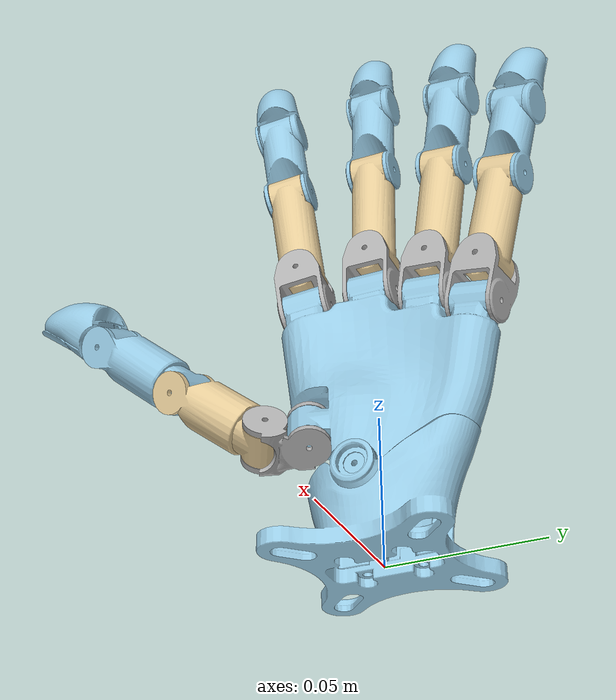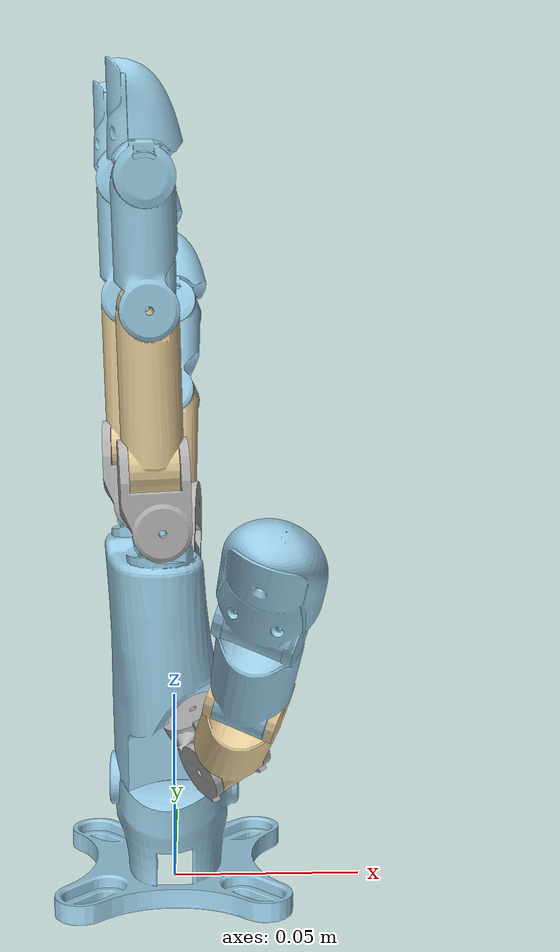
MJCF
<mujoco model="wujihand-left">
  <compiler angle="radian" meshdir="../meshes/left/" />
  <option jacobian="sparse" integrator="RK4" timestep="0.002" solver="Newton" iterations="50" tolerance="1e-10" />
  <default>
    <joint armature="0.0002" damping="0.0" />
  </default>
  <asset>
    <mesh name="l_base_link" content_type="model/stl" file="l_base_link.STL" />
    <mesh name="l_thumb_proximal" content_type="model/stl" file="l_thumb_proximal.STL" />
    <mesh name="l_thumb_proximal_abd" content_type="model/stl" file="l_thumb_proximal_abd.STL" />
    <mesh name="l_thumb_middle" content_type="model/stl" file="l_thumb_middle.STL" />
    <mesh name="l_thumb_distal" content_type="model/stl" file="l_thumb_distal.STL" />
    <mesh name="l_index_finger_proximal" content_type="model/stl" file="l_index_finger_proximal.STL" />
    <mesh name="l_index_finger_proximal_abd" content_type="model/stl" file="l_index_finger_proximal_abd.STL" />
    <mesh name="l_index_finger_middle" content_type="model/stl" file="l_index_finger_middle.STL" />
    <mesh name="l_index_finger_distal" content_type="model/stl" file="l_index_finger_distal.STL" />
    <mesh name="l_middle_finger_proximal" content_type="model/stl" file="l_middle_finger_proximal.STL" />
    <mesh name="l_middle_finger_proximal_abd" content_type="model/stl" file="l_middle_finger_proximal_abd.STL" />
    <mesh name="l_middle_finger_middle" content_type="model/stl" file="l_middle_finger_middle.STL" />
    <mesh name="l_middle_finger_distal" content_type="model/stl" file="l_middle_finger_distal.STL" />
    <mesh name="l_ring_finger_proximal" content_type="model/stl" file="l_ring_finger_proximal.STL" />
    <mesh name="l_ring_finger_proximal_abd" content_type="model/stl" file="l_ring_finger_proximal_abd.STL" />
    <mesh name="l_ring_finger_middle" content_type="model/stl" file="l_ring_finger_middle.STL" />
    <mesh name="l_ring_finger_distal" content_type="model/stl" file="l_ring_finger_distal.STL" />
    <mesh name="l_pinky_proximal" content_type="model/stl" file="l_pinky_proximal.STL" />
    <mesh name="l_pinky_proximal_abd" content_type="model/stl" file="l_pinky_proximal_abd.STL" />
    <mesh name="l_pinky_middle" content_type="model/stl" file="l_pinky_middle.STL" />
    <mesh name="l_pinky_distal" content_type="model/stl" file="l_pinky_distal.STL" />
    <mesh name="l_wrist" content_type="model/stl" file="l_wrist.STL" />
  </asset>
  <worldbody>
    <body name="l_base_link">
      <inertial pos="-0.0026895189358 0.00107718434771 0.0533757160014" mass="0.3013" quat="-0.01026946 -0.03350788 -0.02501735 0.99907252" diaginertia="2.99758531e-04 2.36470022e-04 1.02152019e-04" />
      <geom type="mesh" contype="0" conaffinity="0" group="1" density="0" rgba="0.6 0.8 0.9 1" mesh="l_base_link" />
      <geom type="mesh" rgba="0.6 0.8 0.9 1" mesh="l_base_link" contype="1" conaffinity="1" />
      <geom pos="0.00030016 -0.003 0.0285" quat="0.707014 0.0113822 0.0117356 -0.707011" type="mesh" contype="0" conaffinity="0" group="1" density="0" rgba="0.6 0.8 0.9 1" mesh="l_wrist" />
      <geom pos="0.00030016 -0.003 0.0285" quat="0.707014 0.0113822 0.0117356 -0.707011" type="mesh" rgba="0.6 0.8 0.9 1" mesh="l_wrist" contype="1" conaffinity="1" />
      <body name="l_thumb_proximal" pos="0.0084384 -0.020208 0.044959" quat="0.285631 0.0606193 0.720064 -0.629482">
        <inertial pos="0.00178311 0.000791225 0.00701986" quat="0.901889 -0.0372349 0.0785718 0.423126" mass="0.011" diaginertia="8.62864e-07 8.21693e-07 6.54356e-07" />
        <joint name="l_thumb_cmc_flex" pos="0 0 0" axis="0 -1 0" range="-1.187 1.291" actuatorfrcrange="-0.6 0.6" armature="0.0005" />
        <geom type="mesh" contype="0" conaffinity="0" group="1" density="0" rgba="0.7 0.7 0.7 1" mesh="l_thumb_proximal" />
        <geom type="mesh" rgba="0.7 0.7 0.7 1" mesh="l_thumb_proximal" contype="0" conaffinity="0" />
        <body name="l_thumb_proximal_abd" pos="0.000631673 0.000257895 0.0141612" quat="0.644417 0.307201 0.177193 -0.677463">
          <inertial pos="-1.22552e-05 -4.92145e-06 0.0135605" quat="0.532392 -0.00121984 -0.00222931 0.846494" mass="0.0336" diaginertia="4.38854e-06 4.24746e-06 1.23727e-06" />
          <joint name="l_thumb_cmc_abd" pos="0 0 0" axis="0 1 0" range="-1.484 0.698" actuatorfrcrange="-0.6 0.6" armature="0.0005" />
          <geom type="mesh" contype="0" conaffinity="0" group="1" density="0" rgba="0.9 0.8 0.6 1" mesh="l_thumb_proximal_abd" />
          <geom type="mesh" rgba="0.9 0.8 0.6 1" mesh="l_thumb_proximal_abd" contype="2" conaffinity="2" />
          <body name="l_thumb_middle" pos="4.3136e-05 2.4905e-05 0.033496" quat="0.865201 -0.0377753 0.0218096 -0.499525">
            <inertial pos="1.7747e-07 2.70399e-07 0.0148152" quat="0.999999 -7.13361e-06 5.0611e-06 -0.0012994" mass="0.0358" diaginertia="5.11455e-06 5.00827e-06 1.32802e-06" />
            <joint name="l_thumb_mcp" pos="0 0 0" axis="0 1 0" range="-1.047 1.57" actuatorfrcrange="-0.3 0.3" />
            <geom type="mesh" contype="0" conaffinity="0" group="1" density="0" rgba="0.6 0.8 0.9 1" mesh="l_thumb_middle" />
            <geom type="mesh" rgba="0.6 0.8 0.9 1" mesh="l_thumb_middle" contype="1" conaffinity="1" />
            <body name="l_thumb_distal" pos="0 0 0.036">
              <inertial pos="0.000512401 -1.969e-05 0.0149323" quat="0.998084 -0.00596292 -0.0550991 -0.0274999" mass="0.0159" diaginertia="1.38099e-06 1.3339e-06 6.79986e-07" />
              <joint name="l_thumb_ip" pos="0 0 0" axis="0 1 0" range="-1.047 1.57" actuatorfrcrange="-0.3 0.3" />
              <geom type="mesh" contype="0" conaffinity="0" group="1" density="0" rgba="0.6 0.8 0.9 1" mesh="l_thumb_distal" />
              <geom type="mesh" rgba="0.6 0.8 0.9 1" mesh="l_thumb_distal" contype="1" conaffinity="1" />
              <site name="l_thumb_tip" pos="0 0 0.029787" group="3" size="0.002" rgba="1 0 0 1" />
            </body>
          </body>
        </body>
      </body>
      <body name="l_index_finger_proximal" pos="-0.00302463 -0.0256525 0.0984779" quat="0.996271 0.0693073 -0.0163843 0.0487027">
        <inertial pos="-0.00178137 1.83184e-09 0.00760139" quat="0.706594 -0.0269145 -0.0269145 0.706594" mass="0.0116" diaginertia="9.19684e-07 9.08608e-07 7.88412e-07" />
        <joint name="l_index_finger_mcp_flex" pos="0 0 0" axis="0 1 0" range="-1.047 1.57" actuatorfrcrange="-2 2" armature="0.0005" />
        <geom type="mesh" contype="0" conaffinity="0" group="1" density="0" rgba="0.7 0.7 0.7 1" mesh="l_index_finger_proximal" />
        <geom type="mesh" rgba="0.7 0.7 0.7 1" mesh="l_index_finger_proximal" contype="0" conaffinity="0" />
        <body name="l_index_finger_proximal_abd" pos="-0.00120098 0 0.0145" quat="0.707107 0 0 0.707107">
          <inertial pos="8.04677e-08 -7.30404e-07 0.0187994" quat="0.983237 -1.60588e-05 -3.84243e-06 -0.18233" mass="0.0339" diaginertia="7.01589e-06 7.01555e-06 9.1448e-07" />
          <joint name="l_index_finger_mcp_abd" pos="0 0 0" axis="0 1 0" range="-0.698 0.698" actuatorfrcrange="-0.2 0.2" />
          <geom type="mesh" contype="0" conaffinity="0" group="1" density="0" rgba="0.9 0.8 0.6 1" mesh="l_index_finger_proximal_abd" />
          <geom type="mesh" rgba="0.9 0.8 0.6 1" mesh="l_index_finger_proximal_abd" contype="2" conaffinity="2" />
          <body name="l_index_finger_middle" pos="0 0 0.0376" quat="0.707105 0 0 -0.707108">
            <inertial pos="-0.000247887 -5.07335e-08 0.0190348" quat="0.999883 7.82228e-06 0.0152755 0.000297981" mass="0.0212" diaginertia="2.47797e-06 2.40525e-06 6.52478e-07" />
            <joint name="l_index_finger_pip" pos="0 0 0" axis="0 1 0" range="-1.047 2.094" actuatorfrcrange="-0.3 0.3" />
            <geom type="mesh" contype="0" conaffinity="0" group="1" density="0" rgba="0.6 0.8 0.9 1" mesh="l_index_finger_middle" />
            <geom type="mesh" rgba="0.6 0.8 0.9 1" mesh="l_index_finger_middle" contype="1" conaffinity="1" />
            <body name="l_index_finger_distal" pos="0 0 0.0295">
              <inertial pos="-2.6809e-05 0.000450223 0.0122088" quat="0.995535 0.0584894 -0.0523628 0.0524081" mass="0.0078" diaginertia="5.687e-07 5.37521e-07 2.69652e-07" />
              <joint name="l_index_finger_dip" pos="0 0 0" axis="0 1 0" range="-1.047 1.57" actuatorfrcrange="-0.3 0.3" />
              <geom type="mesh" contype="0" conaffinity="0" group="1" density="0" rgba="0.6 0.8 0.9 1" mesh="l_index_finger_distal" />
              <geom type="mesh" rgba="0.6 0.8 0.9 1" mesh="l_index_finger_distal" contype="1" conaffinity="1" />
              <site name="l_index_finger_tip" pos="0 0 0.02475" group="3" size="0.002" rgba="1 0 0 1" />
            </body>
          </body>
        </body>
      </body>
      <body name="l_middle_finger_proximal" pos="-0.00800284 -0.00394327 0.102415" quat="0.999841 -0.00558408 -0.0169538 -0.000254821">
        <inertial pos="-0.00178137 1.83184e-09 0.00760139" quat="0.706594 -0.0269145 -0.0269145 0.706594" mass="0.0116" diaginertia="9.19684e-07 9.08608e-07 7.88412e-07" />
        <joint name="l_middle_finger_mcp_flex" pos="0 0 0" axis="0 1 0" range="-1.047 1.57" actuatorfrcrange="-2 2" armature="0.0005" />
        <geom type="mesh" contype="0" conaffinity="0" group="1" density="0" rgba="0.7 0.7 0.7 1" mesh="l_middle_finger_proximal" />
        <geom type="mesh" rgba="0.7 0.7 0.7 1" mesh="l_middle_finger_proximal" contype="0" conaffinity="0" />
        <body name="l_middle_finger_proximal_abd" pos="-0.00120098 0 0.0145" quat="0.707107 0 0 0.707107">
          <inertial pos="8.04677e-08 -7.30404e-07 0.0187994" quat="0.983237 -1.60588e-05 -3.84243e-06 -0.18233" mass="0.0339" diaginertia="7.01589e-06 7.01555e-06 9.1448e-07" />
          <joint name="l_middle_finger_mcp_abd" pos="0 0 0" axis="0 1 0" range="-0.698 0.698" actuatorfrcrange="-0.2 0.2" />
          <geom type="mesh" contype="0" conaffinity="0" group="1" density="0" rgba="0.9 0.8 0.6 1" mesh="l_middle_finger_proximal_abd" />
          <geom type="mesh" rgba="0.9 0.8 0.6 1" mesh="l_middle_finger_proximal_abd" contype="2" conaffinity="2" />
          <body name="l_middle_finger_middle" pos="0 0 0.0376" quat="0.707105 0 0 -0.707108">
            <inertial pos="-0.000247887 -5.07335e-08 0.0190348" quat="0.999883 7.82228e-06 0.0152755 0.000297981" mass="0.0212" diaginertia="2.47797e-06 2.40525e-06 6.52478e-07" />
            <joint name="l_middle_finger_pip" pos="0 0 0" axis="0 1 0" range="-1.047 2.094" actuatorfrcrange="-0.3 0.3" />
            <geom type="mesh" contype="0" conaffinity="0" group="1" density="0" rgba="0.6 0.8 0.9 1" mesh="l_middle_finger_middle" />
            <geom type="mesh" rgba="0.6 0.8 0.9 1" mesh="l_middle_finger_middle" contype="1" conaffinity="1" />
            <body name="l_middle_finger_distal" pos="0 0 0.0295">
              <inertial pos="-2.6809e-05 0.000450223 0.0122088" quat="0.995535 0.0584894 -0.0523628 0.0524081" mass="0.0078" diaginertia="5.687e-07 5.37521e-07 2.69652e-07" />
              <joint name="l_middle_finger_dip" pos="0 0 0" axis="0 1 0" range="-1.047 1.57" actuatorfrcrange="-0.3 0.3" />
              <geom type="mesh" contype="0" conaffinity="0" group="1" density="0" rgba="0.6 0.8 0.9 1" mesh="l_middle_finger_distal" />
              <geom type="mesh" rgba="0.6 0.8 0.9 1" mesh="l_middle_finger_distal" contype="1" conaffinity="1" />
              <site name="l_middle_finger_tip" pos="0 0 0.02475" group="3" size="0.002" rgba="1 0 0 1" />
            </body>
          </body>
        </body>
      </body>
      <body name="l_ring_finger_proximal" pos="-0.00529309 0.0167516 0.0938973" quat="0.996893 -0.0710577 -0.00588759 -0.033469">
        <inertial pos="-0.00178137 1.83184e-09 0.00760139" quat="0.706594 -0.0269145 -0.0269145 0.706594" mass="0.0116" diaginertia="9.19684e-07 9.08608e-07 7.88412e-07" />
        <joint name="l_ring_finger_mcp_flex" pos="0 0 0" axis="0 1 0" range="-1.047 1.57" actuatorfrcrange="-2 2" armature="0.0005" />
        <geom type="mesh" contype="0" conaffinity="0" group="1" density="0" rgba="0.7 0.7 0.7 1" mesh="l_ring_finger_proximal" />
        <geom type="mesh" rgba="0.7 0.7 0.7 1" mesh="l_ring_finger_proximal" contype="0" conaffinity="0" />
        <body name="l_ring_finger_proximal_abd" pos="-0.00120098 0 0.0145" quat="0.707107 0 0 0.707107">
          <inertial pos="8.04677e-08 -7.30404e-07 0.0187994" quat="0.983237 -1.60588e-05 -3.84243e-06 -0.18233" mass="0.0339" diaginertia="7.01589e-06 7.01555e-06 9.1448e-07" />
          <joint name="l_ring_finger_mcp_abd" pos="0 0 0" axis="0 1 0" range="-0.698 0.698" actuatorfrcrange="-0.2 0.2" />
          <geom type="mesh" contype="0" conaffinity="0" group="1" density="0" rgba="0.9 0.8 0.6 1" mesh="l_ring_finger_proximal_abd" />
          <geom type="mesh" rgba="0.9 0.8 0.6 1" mesh="l_ring_finger_proximal_abd" contype="2" conaffinity="2" />
          <body name="l_ring_finger_middle" pos="0 0 0.0376" quat="0.707105 0 0 -0.707108">
            <inertial pos="-0.000247887 -5.07335e-08 0.0190348" quat="0.999883 7.82228e-06 0.0152755 0.000297981" mass="0.0212" diaginertia="2.47797e-06 2.40525e-06 6.52478e-07" />
            <joint name="l_ring_finger_pip" pos="0 0 0" axis="0 1 0" range="-1.047 2.094" actuatorfrcrange="-0.3 0.3" />
            <geom type="mesh" contype="0" conaffinity="0" group="1" density="0" rgba="0.6 0.8 0.9 1" mesh="l_ring_finger_middle" />
            <geom type="mesh" rgba="0.6 0.8 0.9 1" mesh="l_ring_finger_middle" contype="1" conaffinity="1" />
            <body name="l_ring_finger_distal" pos="0 0 0.0295">
              <inertial pos="-2.6809e-05 0.000450223 0.0122088" quat="0.995535 0.0584894 -0.0523628 0.0524081" mass="0.0078" diaginertia="5.687e-07 5.37521e-07 2.69652e-07" />
              <joint name="l_ring_finger_dip" pos="0 0 0" axis="0 1 0" range="-1.047 1.57" actuatorfrcrange="-0.3 0.3" />
              <geom type="mesh" contype="0" conaffinity="0" group="1" density="0" rgba="0.6 0.8 0.9 1" mesh="l_ring_finger_distal" />
              <geom type="mesh" rgba="0.6 0.8 0.9 1" mesh="l_ring_finger_distal" contype="1" conaffinity="1" />
              <site name="l_ring_finger_tip" pos="0 0 0.02475" group="3" size="0.002" rgba="1 0 0 1" />
            </body>
          </body>
        </body>
      </body>
      <body name="l_pinky_proximal" pos="-0.000434212 0.0343572 0.0837915" quat="0.989997 -0.124209 0.00357802 -0.0668173">
        <inertial pos="-0.00178136 -2.12813e-07 0.00760145" quat="0.70667 -0.0268964 -0.0269308 0.706519" mass="0.0116" diaginertia="9.19664e-07 9.08603e-07 7.88413e-07" />
        <joint name="l_pinky_mcp_flex" pos="0 0 0" axis="0 1 0" range="-1.047 1.57" actuatorfrcrange="-2 2" armature="0.0005" />
        <geom type="mesh" contype="0" conaffinity="0" group="1" density="0" rgba="0.7 0.7 0.7 1" mesh="l_pinky_proximal" />
        <geom type="mesh" rgba="0.7 0.7 0.7 1" mesh="l_pinky_proximal" contype="0" conaffinity="0" />
        <body name="l_pinky_proximal_abd" pos="-0.00120098 0 0.0145" quat="0.707107 0 0 0.707107">
          <inertial pos="1.55649e-06 -5.45404e-07 0.016785" quat="0.647382 -3.02083e-05 7.77169e-06 0.762165" mass="0.0304" diaginertia="5.38014e-06 5.37944e-06 8.1771e-07" />
          <joint name="l_pinky_mcp_abd" pos="0 0 0" axis="0 1 0" range="-0.698 0.698" actuatorfrcrange="-0.2 0.2" />
          <geom type="mesh" contype="0" conaffinity="0" group="1" density="0" rgba="0.9 0.8 0.6 1" mesh="l_pinky_proximal_abd" />
          <geom type="mesh" rgba="0.9 0.8 0.6 1" mesh="l_pinky_proximal_abd" contype="2" conaffinity="2" />
          <body name="l_pinky_middle" pos="0.0001 0 0.0336" quat="0.707105 0 0 -0.707108">
            <inertial pos="-0.000264491 -3.23236e-07 0.0178807" quat="0.999872 3.90058e-06 0.0159651 0.000317108" mass="0.0188" diaginertia="2.05957e-06 1.98647e-06 5.84911e-07" />
            <joint name="l_pinky_pip" pos="0 0 0" axis="0 1 0" range="-1.047 2.094" actuatorfrcrange="-0.3 0.3" />
            <geom type="mesh" contype="0" conaffinity="0" group="1" density="0" rgba="0.6 0.8 0.9 1" mesh="l_pinky_middle" />
            <geom type="mesh" rgba="0.6 0.8 0.9 1" mesh="l_pinky_middle" contype="1" conaffinity="1" />
            <body name="l_pinky_distal" pos="0 0 0.0275">
              <inertial pos="-0.000344833 0.000450223 0.012204" quat="0.994769 0.0578017 -0.0653262 0.0531671" mass="0.0078" diaginertia="5.687e-07 5.37521e-07 2.69652e-07" />
              <joint name="l_pinky_dip" pos="0 0 0" axis="0 1 0" range="-1.047 1.57" actuatorfrcrange="-0.3 0.3" />
              <geom type="mesh" contype="0" conaffinity="0" group="1" density="0" rgba="0.6 0.8 0.9 1" mesh="l_pinky_distal" />
              <geom type="mesh" rgba="0.6 0.8 0.9 1" mesh="l_pinky_distal" contype="1" conaffinity="1" />
              <site name="l_pinky_tip" pos="0 0 0.024755" group="3" size="0.002" rgba="1 0 0 1" />
            </body>
          </body>
        </body>
      </body>
    </body>
  </worldbody>
  <actuator>
    <position name="left_finger1_joint1_actuator" joint="l_thumb_cmc_flex" kp="0.40844710645048043" kv="0.020882010257063675" ctrlrange="-1.187 1.291" forcerange="-0.6 0.6" />
    <position name="left_finger1_joint2_actuator" joint="l_thumb_cmc_abd" kp="0.6858601063643346" kv="0.030610939996373314" ctrlrange="-1.484 0.698" forcerange="-0.6 0.6" />
    <position name="left_finger1_joint3_actuator" joint="l_thumb_mcp" kp="0.2391112196099482" kv="0.010181475050560962" ctrlrange="-1.047 1.57" forcerange="-0.3 0.3" />
    <position name="left_finger1_joint4_actuator" joint="l_thumb_ip" kp="0.20736128319711747" kv="0.00909698844675045" ctrlrange="-1.047 1.57" forcerange="-0.3 0.3" />
    <position name="left_finger2_joint1_actuator" joint="l_index_finger_mcp_flex" kp="0.37352218155860073" kv="0.01882274330029718" ctrlrange="-1.047 1.57" forcerange="-2 2" />
    <position name="left_finger2_joint2_actuator" joint="l_index_finger_mcp_abd" kp="0.45592448909027794" kv="0.019798167597016643" ctrlrange="-0.698 0.698" forcerange="-0.2 0.2" />
    <position name="left_finger2_joint3_actuator" joint="l_index_finger_pip" kp="0.24368366649522863" kv="0.010477031953162727" ctrlrange="-1.047 2.094" forcerange="-0.3 0.3" />
    <position name="left_finger2_joint4_actuator" joint="l_index_finger_dip" kp="0.18026971340925335" kv="0.008240212147903584" ctrlrange="-1.047 1.57" forcerange="-0.3 0.3" />
    <position name="left_finger3_joint1_actuator" joint="l_middle_finger_mcp_flex" kp="0.3687093483646485" kv="0.01848622487024593" ctrlrange="-1.047 1.57" forcerange="-2 2" />
    <position name="left_finger3_joint2_actuator" joint="l_middle_finger_mcp_abd" kp="0.4164253443634641" kv="0.018032947229953678" ctrlrange="-0.698 0.698" forcerange="-0.2 0.2" />
    <position name="left_finger3_joint3_actuator" joint="l_middle_finger_pip" kp="0.22218607502059182" kv="0.009592200014076666" ctrlrange="-1.047 2.094" forcerange="-0.3 0.3" />
    <position name="left_finger3_joint4_actuator" joint="l_middle_finger_dip" kp="0.19427606072023446" kv="0.009152994605972402" ctrlrange="-1.047 1.57" forcerange="-0.3 0.3" />
    <position name="left_finger4_joint1_actuator" joint="l_ring_finger_mcp_flex" kp="0.35718151495111794" kv="0.018376606800780005" ctrlrange="-1.047 1.57" forcerange="-2 2" />
    <position name="left_finger4_joint2_actuator" joint="l_ring_finger_mcp_abd" kp="0.42977315313086895" kv="0.01867700966212433" ctrlrange="-0.698 0.698" forcerange="-0.2 0.2" />
    <position name="left_finger4_joint3_actuator" joint="l_ring_finger_pip" kp="0.24930151196247122" kv="0.01059512121009555" ctrlrange="-1.047 2.094" forcerange="-0.3 0.3" />
    <position name="left_finger4_joint4_actuator" joint="l_ring_finger_dip" kp="0.2285032688178066" kv="0.009917602877441107" ctrlrange="-1.047 1.57" forcerange="-0.3 0.3" />
    <position name="left_finger5_joint1_actuator" joint="l_pinky_mcp_flex" kp="0.3655325975433942" kv="0.018616960278988272" ctrlrange="-1.047 1.57" forcerange="-2 2" />
    <position name="left_finger5_joint2_actuator" joint="l_pinky_mcp_abd" kp="0.41393113081120425" kv="0.018732177029667153" ctrlrange="-0.698 0.698" forcerange="-0.2 0.2" />
    <position name="left_finger5_joint3_actuator" joint="l_pinky_pip" kp="0.22729367621965954" kv="0.00951005441616486" ctrlrange="-1.047 2.094" forcerange="-0.3 0.3" />
    <position name="left_finger5_joint4_actuator" joint="l_pinky_dip" kp="0.1964723550341816" kv="0.009017295241756363" ctrlrange="-1.047 1.57" forcerange="-0.3 0.3" />
  </actuator>
  <contact>
    <exclude body1="l_base_link" body2="l_thumb_distal" />
    <exclude body1="l_base_link" body2="l_thumb_middle" />
    <exclude body1="l_index_finger_distal" body2="l_middle_finger_distal" />
    <exclude body1="l_index_finger_distal" body2="l_middle_finger_middle" />
    <exclude body1="l_index_finger_distal" body2="l_ring_finger_distal" />
    <exclude body1="l_index_finger_distal" body2="l_ring_finger_middle" />
    <exclude body1="l_index_finger_distal" body2="l_thumb_middle" />
    <exclude body1="l_index_finger_distal" body2="l_base_link" />
    <exclude body1="l_index_finger_middle" body2="l_middle_finger_distal" />
    <exclude body1="l_index_finger_middle" body2="l_middle_finger_middle" />
    <exclude body1="l_index_finger_middle" body2="l_ring_finger_distal" />
    <exclude body1="l_index_finger_middle" body2="l_ring_finger_middle" />
    <exclude body1="l_index_finger_proximal_abd" body2="l_middle_finger_proximal_abd" />
    <exclude body1="l_index_finger_proximal_abd" body2="l_thumb_proximal_abd" />
    <exclude body1="l_middle_finger_distal" body2="l_pinky_distal" />
    <exclude body1="l_middle_finger_distal" body2="l_pinky_middle" />
    <exclude body1="l_middle_finger_distal" body2="l_ring_finger_distal" />
    <exclude body1="l_middle_finger_distal" body2="l_ring_finger_middle" />
    <exclude body1="l_middle_finger_distal" body2="l_thumb_middle" />
    <exclude body1="l_middle_finger_distal" body2="l_base_link" />
    <exclude body1="l_middle_finger_middle" body2="l_pinky_distal" />
    <exclude body1="l_middle_finger_middle" body2="l_pinky_middle" />
    <exclude body1="l_middle_finger_middle" body2="l_ring_finger_distal" />
    <exclude body1="l_middle_finger_middle" body2="l_ring_finger_middle" />
    <exclude body1="l_middle_finger_proximal_abd" body2="l_ring_finger_proximal_abd" />
    <exclude body1="l_pinky_distal" body2="l_ring_finger_distal" />
    <exclude body1="l_pinky_distal" body2="l_ring_finger_middle" />
    <exclude body1="l_pinky_distal" body2="l_base_link" />
    <exclude body1="l_pinky_middle" body2="l_ring_finger_distal" />
    <exclude body1="l_pinky_middle" body2="l_ring_finger_middle" />
    <exclude body1="l_pinky_proximal_abd" body2="l_ring_finger_proximal_abd" />
    <exclude body1="l_ring_finger_distal" body2="l_base_link" />
  </contact>
</mujoco>
